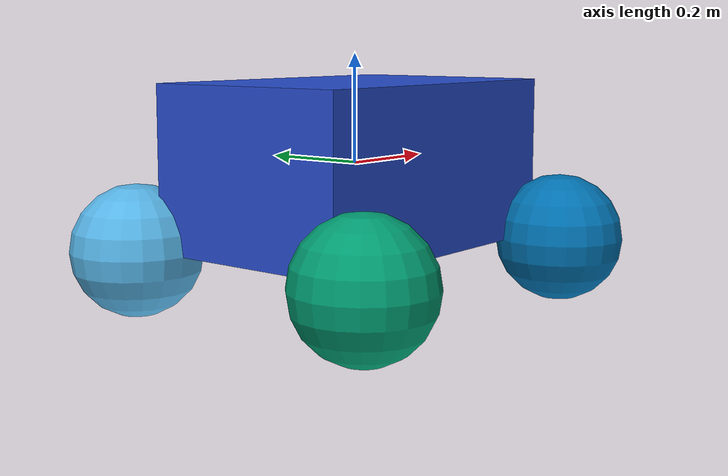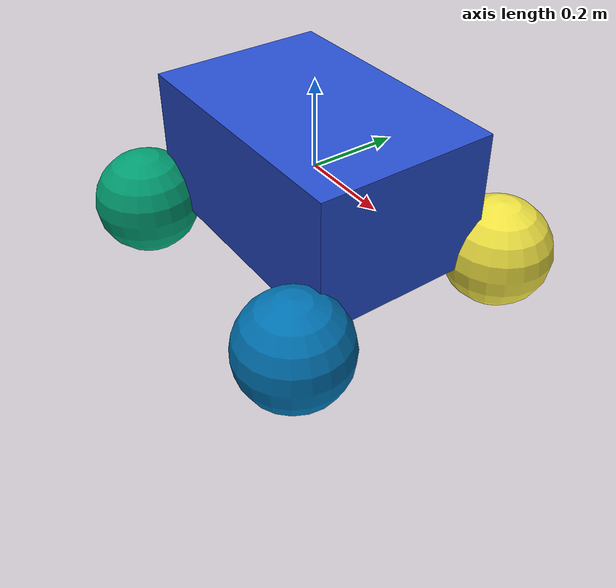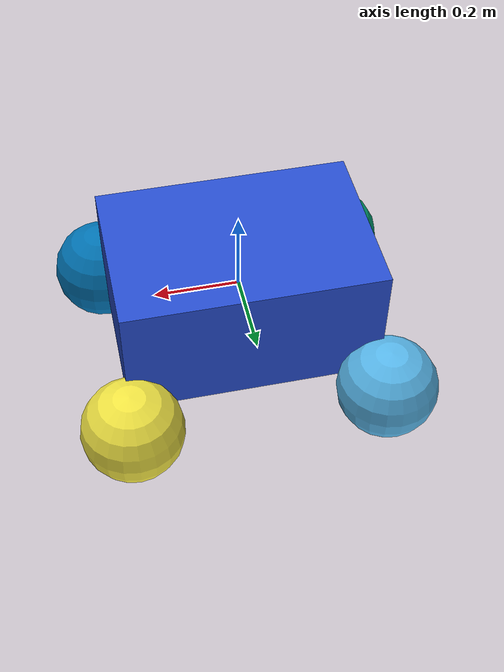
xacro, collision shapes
<?xml version="1.0" ?>
<robot name="cleaner" xmlns:xacro="http://www.ros.org/wiki/xacro">

  <xacro:include filename="$(find robot_cleaner)/robot/materials.xacro" />
  <xacro:include filename="$(find robot_cleaner)/robot/cleaner_wheels.gazebo" />
  <xacro:include filename="$(find robot_cleaner)/robot/wheels.xacro" />

  <link name="link_chassis">
    <!-- pose and inertial -->
    <pose>0 0 0.1 0 0 0</pose>
    <inertial>
      <mass value="5"/>
      <origin rpy="0 0 0" xyz="0 0 0.1"/>
      <inertia ixx="0.0395416666667" ixy="0" ixz="0" iyy="0.106208333333" iyz="0" izz="0.106208333333"/>
    </inertial>
    <!-- body -->
    <collision name="collision_chassis">
      <geometry>
        <box size="0.6 0.4 0.3"/>
      </geometry>
    </collision>
    <visual>
      <origin rpy="0 0 0" xyz="0 0 0"/>
      <geometry>
        <box size="0.6 0.4 0.3"/>
      </geometry>
      <material name="blue"/>
    </visual>
    <!-- caster front -->
  </link>

  <xacro:link_right_wheel name="link_right_front_wheel" />
  <xacro:joint_right_wheel name="joint_right_front_wheel" child="link_right_front_wheel" origin_xyz="-0.3 0.26 -0.15" />

  <xacro:link_left_wheel name="link_left_front_wheel" />
  <xacro:joint_left_wheel name="joint_left_front_wheel" child="link_left_front_wheel" origin_xyz="-0.3 -0.26 -0.15" />

  <xacro:link_right_wheel name="link_right_back_wheel" />
  <xacro:joint_right_wheel name="joint_right_back_wheel" child="link_right_back_wheel" origin_xyz="0.3 0.26 -0.15" />

  <xacro:link_left_wheel name="link_left_back_wheel" />
  <xacro:joint_left_wheel name="joint_left_back_wheel" child="link_left_back_wheel" origin_xyz="0.3 -0.26 -0.15" />
</robot>

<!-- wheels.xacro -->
<robot>
    <macro name="link_left_wheel" params="name">
        <link name="${name}">
            <inertial>
              <mass value="10"/>
              <origin rpy="0 1.5707 1.5707" xyz="0 0 0"/>
              <inertia ixx="0.00044332" ixy="0" ixz="0" iyy="0.00044332" iyz="0" izz="0.00072"/>
            </inertial>
            <collision name="link_wheel_collision">
              <origin rpy="0 0 0" xyz="0 0 0"/>
              <geometry>
              <sphere radius="0.12"/>
              </geometry>
            </collision>
            <visual name="${name}_visual">
              <origin rpy="0 0 0" xyz="0 0 0"/>
              <geometry>
                <mesh filename="package://robot_cleaner/robot/meshes/wheels/omni_wheel_2.dae" />
              </geometry>
            </visual>
        </link>
    </macro>

    <macro name="joint_left_wheel" params="name child origin_xyz">
      <joint name="${name}" type="continuous">
        <origin rpy="0 0 0" xyz="${origin_xyz}"/>
        <child link="${child}"/>
        <parent link="link_chassis"/>
        <axis rpy="0 0 0" xyz="0 1 0"/>
      </joint>
    </macro>

 <macro name="link_right_wheel" params="name">
        <link name="${name}">
            <inertial>
              <mass value="10"/>
              <origin rpy="0 1.5707 1.5707" xyz="0 0 0"/>
              <inertia ixx="0.00044332" ixy="0" ixz="0" iyy="0.00044332" iyz="0" izz="0.00072"/>
            </inertial>
            <collision name="link_wheel_collision">
              <origin rpy="0 0 0" xyz="0 0 0"/>
              <geometry>
              <sphere radius="0.12"/>
              </geometry>
            </collision>
            <visual name="${name}_visual">
              <origin rpy="0 0 0" xyz="0 0 0"/>
              <geometry>
                <mesh filename="package://robot_cleaner/robot/meshes/wheels/omni_wheel_1.dae" />
              </geometry>
            </visual>
        </link>
    </macro>

    <macro name="joint_right_wheel" params="name child origin_xyz">
      <joint name="${name}" type="continuous">
        <origin rpy="0 0 0" xyz="${origin_xyz}"/>
        <child link="${child}"/>
        <parent link="link_chassis"/>
        <axis rpy="0 0 0" xyz="0 1 0"/>
      </joint>
    </macro>
</robot>
